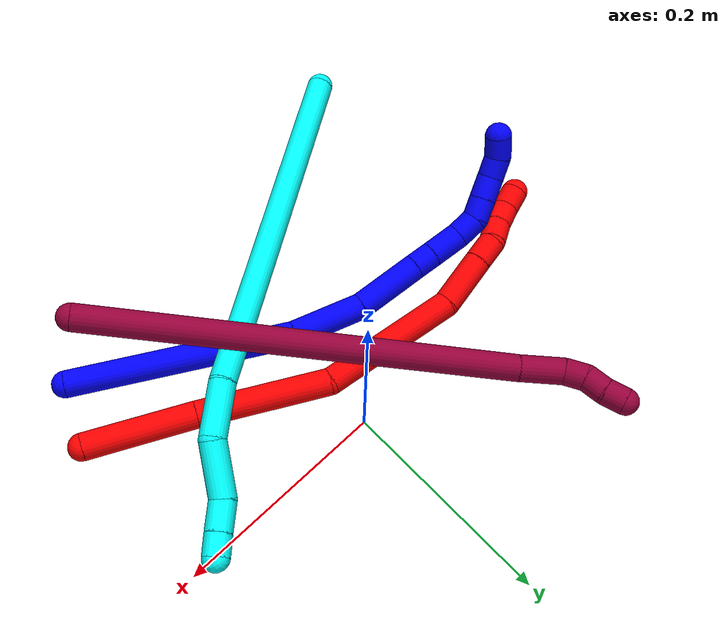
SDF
<sdf version="1.7">
 <world name="default">
  <model name="1">
   <static>0</static>
   <link name="1">
    <collision name="collision-cylinder-e_1_1_4">
     <pose>-0.084362 0.015062 -0.060694 -2.89834 -0.932909 2.66529</pose>
     <geometry><cylinder><radius>0.0125</radius><length>0.210024</length></cylinder></geometry>
     <surface>
      <friction><ode><mu>1.16</mu><mu2>1.16</mu2><slip1>0</slip1><slip2>0</slip2></ode></friction>
      <contact><ode><kp>1e+06</kp><kd>1</kd><max_vel>0</max_vel><min_depth>0.001</min_depth></ode></contact>
     </surface>
    </collision>
    <visual name="visual-cylinder-e_1_1_4">
     <pose>-0.084362 0.015062 -0.060694 -2.89834 -0.932909 2.66529</pose>
     <geometry><cylinder><radius>0.0125</radius><length>0.210024</length></cylinder></geometry>
     <material><ambient>0 0 1 1</ambient></material>
    </visual>
    <collision name="collision-cylinder-e_2_4_5">
     <pose>-0.19538 0.042397 -0.139062 -2.53465 -0.891665 1.98152</pose>
     <geometry><cylinder><radius>0.0125</radius><length>0.068515</length></cylinder></geometry>
     <surface>
      <friction><ode><mu>1.16</mu><mu2>1.16</mu2><slip1>0</slip1><slip2>0</slip2></ode></friction>
      <contact><ode><kp>1e+06</kp><kd>1</kd><max_vel>0</max_vel><min_depth>0.001</min_depth></ode></contact>
     </surface>
    </collision>
    <visual name="visual-cylinder-e_2_4_5">
     <pose>-0.19538 0.042397 -0.139062 -2.53465 -0.891665 1.98152</pose>
     <geometry><cylinder><radius>0.0125</radius><length>0.068515</length></cylinder></geometry>
     <material><ambient>0 0 1 1</ambient></material>
    </visual>
    <collision name="collision-cylinder-e_3_5_6">
     <pose>-0.24225 0.07164 -0.174721 -2.38523 -0.685294 1.46324</pose>
     <geometry><cylinder><radius>0.0125</radius><length>0.063876</length></cylinder></geometry>
     <surface>
      <friction><ode><mu>1.16</mu><mu2>1.16</mu2><slip1>0</slip1><slip2>0</slip2></ode></friction>
      <contact><ode><kp>1e+06</kp><kd>1</kd><max_vel>0</max_vel><min_depth>0.001</min_depth></ode></contact>
     </surface>
    </collision>
    <visual name="visual-cylinder-e_3_5_6">
     <pose>-0.24225 0.07164 -0.174721 -2.38523 -0.685294 1.46324</pose>
     <geometry><cylinder><radius>0.0125</radius><length>0.063876</length></cylinder></geometry>
     <material><ambient>0 0 1 1</ambient></material>
    </visual>
    <collision name="collision-cylinder-e_4_6_7">
     <pose>-0.268956 0.093913 -0.198757 -2.42196 -0.678934 1.5076</pose>
     <geometry><cylinder><radius>0.0125</radius><length>0.020676</length></cylinder></geometry>
     <surface>
      <friction><ode><mu>1.16</mu><mu2>1.16</mu2><slip1>0</slip1><slip2>0</slip2></ode></friction>
      <contact><ode><kp>1e+06</kp><kd>1</kd><max_vel>0</max_vel><min_depth>0.001</min_depth></ode></contact>
     </surface>
    </collision>
    <visual name="visual-cylinder-e_4_6_7">
     <pose>-0.268956 0.093913 -0.198757 -2.42196 -0.678934 1.5076</pose>
     <geometry><cylinder><radius>0.0125</radius><length>0.020676</length></cylinder></geometry>
     <material><ambient>0 0 1 1</ambient></material>
    </visual>
    <collision name="collision-cylinder-e_5_7_8">
     <pose>-0.285078 0.107232 -0.214224 -2.43633 -0.66168 1.50182</pose>
     <geometry><cylinder><radius>0.0125</radius><length>0.031347</length></cylinder></geometry>
     <surface>
      <friction><ode><mu>1.16</mu><mu2>1.16</mu2><slip1>0</slip1><slip2>0</slip2></ode></friction>
      <contact><ode><kp>1e+06</kp><kd>1</kd><max_vel>0</max_vel><min_depth>0.001</min_depth></ode></contact>
     </surface>
    </collision>
    <visual name="visual-cylinder-e_5_7_8">
     <pose>-0.285078 0.107232 -0.214224 -2.43633 -0.66168 1.50182</pose>
     <geometry><cylinder><radius>0.0125</radius><length>0.031347</length></cylinder></geometry>
     <material><ambient>0 0 1 1</ambient></material>
    </visual>
    <collision name="collision-cylinder-e_6_8_9">
     <pose>-0.299806 0.121178 -0.231607 -2.50182 -0.474132 1.26031</pose>
     <geometry><cylinder><radius>0.0125</radius><length>0.022327</length></cylinder></geometry>
     <surface>
      <friction><ode><mu>1.16</mu><mu2>1.16</mu2><slip1>0</slip1><slip2>0</slip2></ode></friction>
      <contact><ode><kp>1e+06</kp><kd>1</kd><max_vel>0</max_vel><min_depth>0.001</min_depth></ode></contact>
     </surface>
    </collision>
    <visual name="visual-cylinder-e_6_8_9">
     <pose>-0.299806 0.121178 -0.231607 -2.50182 -0.474132 1.26031</pose>
     <geometry><cylinder><radius>0.0125</radius><length>0.022327</length></cylinder></geometry>
     <material><ambient>0 0 1 1</ambient></material>
    </visual>
    <collision name="collision-cylinder-e_7_9_10">
     <pose>-0.305443 0.134836 -0.245994 -2.26389 -0.053766 0.11445</pose>
     <geometry><cylinder><radius>0.0125</radius><length>0.020123</length></cylinder></geometry>
     <surface>
      <friction><ode><mu>1.16</mu><mu2>1.16</mu2><slip1>0</slip1><slip2>0</slip2></ode></friction>
      <contact><ode><kp>1e+06</kp><kd>1</kd><max_vel>0</max_vel><min_depth>0.001</min_depth></ode></contact>
     </surface>
    </collision>
    <visual name="visual-cylinder-e_7_9_10">
     <pose>-0.305443 0.134836 -0.245994 -2.26389 -0.053766 0.11445</pose>
     <geometry><cylinder><radius>0.0125</radius><length>0.020123</length></cylinder></geometry>
     <material><ambient>0 0 1 1</ambient></material>
    </visual>
    <collision name="collision-cylinder-e_8_10_11">
     <pose>-0.306576 0.151105 -0.259564 -2.26784 -0.053085 0.113585</pose>
     <geometry><cylinder><radius>0.0125</radius><length>0.022309</length></cylinder></geometry>
     <surface>
      <friction><ode><mu>1.16</mu><mu2>1.16</mu2><slip1>0</slip1><slip2>0</slip2></ode></friction>
      <contact><ode><kp>1e+06</kp><kd>1</kd><max_vel>0</max_vel><min_depth>0.001</min_depth></ode></contact>
     </surface>
    </collision>
    <visual name="visual-cylinder-e_8_10_11">
     <pose>-0.306576 0.151105 -0.259564 -2.26784 -0.053085 0.113585</pose>
     <geometry><cylinder><radius>0.0125</radius><length>0.022309</length></cylinder></geometry>
     <material><ambient>0 0 1 1</ambient></material>
    </visual>
    <collision name="collision-cylinder-e_9_11_12">
     <pose>-0.306118 0.166018 -0.274537 -2.458 0.103707 -0.289725</pose>
     <geometry><cylinder><radius>0.0125</radius><length>0.020288</length></cylinder></geometry>
     <surface>
      <friction><ode><mu>1.16</mu><mu2>1.16</mu2><slip1>0</slip1><slip2>0</slip2></ode></friction>
      <contact><ode><kp>1e+06</kp><kd>1</kd><max_vel>0</max_vel><min_depth>0.001</min_depth></ode></contact>
     </surface>
    </collision>
    <visual name="visual-cylinder-e_9_11_12">
     <pose>-0.306118 0.166018 -0.274537 -2.458 0.103707 -0.289725</pose>
     <geometry><cylinder><radius>0.0125</radius><length>0.020288</length></cylinder></geometry>
     <material><ambient>0 0 1 1</ambient></material>
    </visual>
    <collision name="collision-cylinder-e_10_12_2">
     <pose>-0.300211 0.177845 -0.289563 -2.4935 0.493196 -1.28626</pose>
     <geometry><cylinder><radius>0.0125</radius><length>0.020515</length></cylinder></geometry>
     <surface>
      <friction><ode><mu>1.16</mu><mu2>1.16</mu2><slip1>0</slip1><slip2>0</slip2></ode></friction>
      <contact><ode><kp>1e+06</kp><kd>1</kd><max_vel>0</max_vel><min_depth>0.001</min_depth></ode></contact>
     </surface>
    </collision>
    <visual name="visual-cylinder-e_10_12_2">
     <pose>-0.300211 0.177845 -0.289563 -2.4935 0.493196 -1.28626</pose>
     <geometry><cylinder><radius>0.0125</radius><length>0.020515</length></cylinder></geometry>
     <material><ambient>0 0 1 1</ambient></material>
    </visual>
    <collision name="collision-sphere-2">
     <pose>-0.295355 0.183299 -0.296765 0 -0 0</pose>
     <geometry><sphere><radius>0.0125</radius></sphere></geometry>
     <surface>
      <friction><ode><mu>1.16</mu><mu2>1.16</mu2><slip1>0</slip1><slip2>0</slip2></ode></friction>
      <contact><ode><kp>1e+06</kp><kd>1</kd><max_vel>0</max_vel><min_depth>0.001</min_depth></ode></contact>
     </surface>
    </collision>
    <visual name="visual-sphere-2">
     <pose>-0.295355 0.183299 -0.296765 0 -0 0</pose>
     <geometry><sphere><radius>0.0125</radius></sphere></geometry>
     <material><ambient>0 0 1 1</ambient></material>
    </visual>
    <collision name="collision-sphere-12">
     <pose>-0.305068 0.172391 -0.28236 0 -0 0</pose>
     <geometry><sphere><radius>0.0125</radius></sphere></geometry>
     <surface>
      <friction><ode><mu>1.16</mu><mu2>1.16</mu2><slip1>0</slip1><slip2>0</slip2></ode></friction>
      <contact><ode><kp>1e+06</kp><kd>1</kd><max_vel>0</max_vel><min_depth>0.001</min_depth></ode></contact>
     </surface>
    </collision>
    <visual name="visual-sphere-12">
     <pose>-0.305068 0.172391 -0.28236 0 -0 0</pose>
     <geometry><sphere><radius>0.0125</radius></sphere></geometry>
     <material><ambient>0 0 1 1</ambient></material>
    </visual>
    <collision name="collision-sphere-11">
     <pose>-0.307168 0.159646 -0.266714 0 -0 0</pose>
     <geometry><sphere><radius>0.0125</radius></sphere></geometry>
     <surface>
      <friction><ode><mu>1.16</mu><mu2>1.16</mu2><slip1>0</slip1><slip2>0</slip2></ode></friction>
      <contact><ode><kp>1e+06</kp><kd>1</kd><max_vel>0</max_vel><min_depth>0.001</min_depth></ode></contact>
     </surface>
    </collision>
    <visual name="visual-sphere-11">
     <pose>-0.307168 0.159646 -0.266714 0 -0 0</pose>
     <geometry><sphere><radius>0.0125</radius></sphere></geometry>
     <material><ambient>0 0 1 1</ambient></material>
    </visual>
    <collision name="collision-sphere-10">
     <pose>-0.305984 0.142565 -0.252413 0 -0 0</pose>
     <geometry><sphere><radius>0.0125</radius></sphere></geometry>
     <surface>
      <friction><ode><mu>1.16</mu><mu2>1.16</mu2><slip1>0</slip1><slip2>0</slip2></ode></friction>
      <contact><ode><kp>1e+06</kp><kd>1</kd><max_vel>0</max_vel><min_depth>0.001</min_depth></ode></contact>
     </surface>
    </collision>
    <visual name="visual-sphere-10">
     <pose>-0.305984 0.142565 -0.252413 0 -0 0</pose>
     <geometry><sphere><radius>0.0125</radius></sphere></geometry>
     <material><ambient>0 0 1 1</ambient></material>
    </visual>
    <collision name="collision-sphere-9">
     <pose>-0.304903 0.127107 -0.239575 0 -0 0</pose>
     <geometry><sphere><radius>0.0125</radius></sphere></geometry>
     <surface>
      <friction><ode><mu>1.16</mu><mu2>1.16</mu2><slip1>0</slip1><slip2>0</slip2></ode></friction>
      <contact><ode><kp>1e+06</kp><kd>1</kd><max_vel>0</max_vel><min_depth>0.001</min_depth></ode></contact>
     </surface>
    </collision>
    <visual name="visual-sphere-9">
     <pose>-0.304903 0.127107 -0.239575 0 -0 0</pose>
     <geometry><sphere><radius>0.0125</radius></sphere></geometry>
     <material><ambient>0 0 1 1</ambient></material>
    </visual>
    <collision name="collision-sphere-4">
     <pose>-0.168724 0.030125 -0.121387 0 -0 0</pose>
     <geometry><sphere><radius>0.0125</radius></sphere></geometry>
     <surface>
      <friction><ode><mu>1.16</mu><mu2>1.16</mu2><slip1>0</slip1><slip2>0</slip2></ode></friction>
      <contact><ode><kp>1e+06</kp><kd>1</kd><max_vel>0</max_vel><min_depth>0.001</min_depth></ode></contact>
     </surface>
    </collision>
    <visual name="visual-sphere-4">
     <pose>-0.168724 0.030125 -0.121387 0 -0 0</pose>
     <geometry><sphere><radius>0.0125</radius></sphere></geometry>
     <material><ambient>0 0 1 1</ambient></material>
    </visual>
    <collision name="collision-sphere-1">
     <geometry><sphere><radius>0.0125</radius></sphere></geometry>
     <surface>
      <friction><ode><mu>1.16</mu><mu2>1.16</mu2><slip1>0</slip1><slip2>0</slip2></ode></friction>
      <contact><ode><kp>1e+06</kp><kd>1</kd><max_vel>0</max_vel><min_depth>0.001</min_depth></ode></contact>
     </surface>
    </collision>
    <visual name="visual-sphere-1">
     <geometry><sphere><radius>0.0125</radius></sphere></geometry>
     <material><ambient>0 0 1 1</ambient></material>
    </visual>
    <collision name="collision-sphere-8">
     <pose>-0.294709 0.115248 -0.223639 0 -0 0</pose>
     <geometry><sphere><radius>0.0125</radius></sphere></geometry>
     <surface>
      <friction><ode><mu>1.16</mu><mu2>1.16</mu2><slip1>0</slip1><slip2>0</slip2></ode></friction>
      <contact><ode><kp>1e+06</kp><kd>1</kd><max_vel>0</max_vel><min_depth>0.001</min_depth></ode></contact>
     </surface>
    </collision>
    <visual name="visual-sphere-8">
     <pose>-0.294709 0.115248 -0.223639 0 -0 0</pose>
     <geometry><sphere><radius>0.0125</radius></sphere></geometry>
     <material><ambient>0 0 1 1</ambient></material>
    </visual>
    <collision name="collision-sphere-5">
     <pose>-0.222037 0.05467 -0.156736 0 -0 0</pose>
     <geometry><sphere><radius>0.0125</radius></sphere></geometry>
     <surface>
      <friction><ode><mu>1.16</mu><mu2>1.16</mu2><slip1>0</slip1><slip2>0</slip2></ode></friction>
      <contact><ode><kp>1e+06</kp><kd>1</kd><max_vel>0</max_vel><min_depth>0.001</min_depth></ode></contact>
     </surface>
    </collision>
    <visual name="visual-sphere-5">
     <pose>-0.222037 0.05467 -0.156736 0 -0 0</pose>
     <geometry><sphere><radius>0.0125</radius></sphere></geometry>
     <material><ambient>0 0 1 1</ambient></material>
    </visual>
    <collision name="collision-sphere-6">
     <pose>-0.262464 0.08861 -0.192706 0 -0 0</pose>
     <geometry><sphere><radius>0.0125</radius></sphere></geometry>
     <surface>
      <friction><ode><mu>1.16</mu><mu2>1.16</mu2><slip1>0</slip1><slip2>0</slip2></ode></friction>
      <contact><ode><kp>1e+06</kp><kd>1</kd><max_vel>0</max_vel><min_depth>0.001</min_depth></ode></contact>
     </surface>
    </collision>
    <visual name="visual-sphere-6">
     <pose>-0.262464 0.08861 -0.192706 0 -0 0</pose>
     <geometry><sphere><radius>0.0125</radius></sphere></geometry>
     <material><ambient>0 0 1 1</ambient></material>
    </visual>
    <collision name="collision-sphere-7">
     <pose>-0.275448 0.099216 -0.204808 0 -0 0</pose>
     <geometry><sphere><radius>0.0125</radius></sphere></geometry>
     <surface>
      <friction><ode><mu>1.16</mu><mu2>1.16</mu2><slip1>0</slip1><slip2>0</slip2></ode></friction>
      <contact><ode><kp>1e+06</kp><kd>1</kd><max_vel>0</max_vel><min_depth>0.001</min_depth></ode></contact>
     </surface>
    </collision>
    <visual name="visual-sphere-7">
     <pose>-0.275448 0.099216 -0.204808 0 -0 0</pose>
     <geometry><sphere><radius>0.0125</radius></sphere></geometry>
     <material><ambient>0 0 1 1</ambient></material>
    </visual>
    <inertial>
     <pose>-0.186249 0.063508 -0.143364 0 -0 0</pose>
     <mass>0.5</mass>
     <inertia>
      <ixx>-0.000183</ixx>
      <ixy>0</ixy>
      <ixz>0</ixz>
      <iyy>0.001039</iyy>
      <iyz>0</iyz>
      <izz>0.000502</izz>
     </inertia>
    </inertial>
   </link>
   <pose>0.172231 -0.208647 0.011496 -3.08128 -0.603874 -0.710256</pose>
  </model>
  <model name="2">
   <static>0</static>
   <link name="2">
    <collision name="collision-cylinder-e_1_1_4">
     <pose>-0.042837 0.023736 0.015879 -0.981193 -0.982797 0.556891</pose>
     <geometry><cylinder><radius>0.0125</radius><length>0.102967</length></cylinder></geometry>
     <surface>
      <friction><ode><mu>1.16</mu><mu2>1.16</mu2><slip1>0</slip1><slip2>0</slip2></ode></friction>
      <contact><ode><kp>1e+06</kp><kd>1</kd><max_vel>0</max_vel><min_depth>0.001</min_depth></ode></contact>
     </surface>
    </collision>
    <visual name="visual-cylinder-e_1_1_4">
     <pose>-0.042837 0.023736 0.015879 -0.981193 -0.982797 0.556891</pose>
     <geometry><cylinder><radius>0.0125</radius><length>0.102967</length></cylinder></geometry>
     <material><ambient>1 0 0 1</ambient></material>
    </visual>
    <collision name="collision-cylinder-e_2_4_5">
     <pose>-0.135434 0.073661 0.056285 -0.818154 -0.946069 0.436682</pose>
     <geometry><cylinder><radius>0.0125</radius><length>0.122694</length></cylinder></geometry>
     <surface>
      <friction><ode><mu>1.16</mu><mu2>1.16</mu2><slip1>0</slip1><slip2>0</slip2></ode></friction>
      <contact><ode><kp>1e+06</kp><kd>1</kd><max_vel>0</max_vel><min_depth>0.001</min_depth></ode></contact>
     </surface>
    </collision>
    <visual name="visual-cylinder-e_2_4_5">
     <pose>-0.135434 0.073661 0.056285 -0.818154 -0.946069 0.436682</pose>
     <geometry><cylinder><radius>0.0125</radius><length>0.122694</length></cylinder></geometry>
     <material><ambient>1 0 0 1</ambient></material>
    </visual>
    <collision name="collision-cylinder-e_3_5_6">
     <pose>-0.248717 0.118681 0.086335 -1.28552 -1.27115 1.00939</pose>
     <geometry><cylinder><radius>0.0125</radius><length>0.132971</length></cylinder></geometry>
     <surface>
      <friction><ode><mu>1.16</mu><mu2>1.16</mu2><slip1>0</slip1><slip2>0</slip2></ode></friction>
      <contact><ode><kp>1e+06</kp><kd>1</kd><max_vel>0</max_vel><min_depth>0.001</min_depth></ode></contact>
     </surface>
    </collision>
    <visual name="visual-cylinder-e_3_5_6">
     <pose>-0.248717 0.118681 0.086335 -1.28552 -1.27115 1.00939</pose>
     <geometry><cylinder><radius>0.0125</radius><length>0.132971</length></cylinder></geometry>
     <material><ambient>1 0 0 1</ambient></material>
    </visual>
    <collision name="collision-cylinder-e_4_6_7">
     <pose>-0.338192 0.138426 0.088639 -2.86523 -1.44262 2.82791</pose>
     <geometry><cylinder><radius>0.0125</radius><length>0.052334</length></cylinder></geometry>
     <surface>
      <friction><ode><mu>1.16</mu><mu2>1.16</mu2><slip1>0</slip1><slip2>0</slip2></ode></friction>
      <contact><ode><kp>1e+06</kp><kd>1</kd><max_vel>0</max_vel><min_depth>0.001</min_depth></ode></contact>
     </surface>
    </collision>
    <visual name="visual-cylinder-e_4_6_7">
     <pose>-0.338192 0.138426 0.088639 -2.86523 -1.44262 2.82791</pose>
     <geometry><cylinder><radius>0.0125</radius><length>0.052334</length></cylinder></geometry>
     <material><ambient>1 0 0 1</ambient></material>
    </visual>
    <collision name="collision-cylinder-e_5_7_8">
     <pose>-0.376641 0.140117 0.083684 -2.72025 -1.41962 2.65373</pose>
     <geometry><cylinder><radius>0.0125</radius><length>0.025282</length></cylinder></geometry>
     <surface>
      <friction><ode><mu>1.16</mu><mu2>1.16</mu2><slip1>0</slip1><slip2>0</slip2></ode></friction>
      <contact><ode><kp>1e+06</kp><kd>1</kd><max_vel>0</max_vel><min_depth>0.001</min_depth></ode></contact>
     </surface>
    </collision>
    <visual name="visual-cylinder-e_5_7_8">
     <pose>-0.376641 0.140117 0.083684 -2.72025 -1.41962 2.65373</pose>
     <geometry><cylinder><radius>0.0125</radius><length>0.025282</length></cylinder></geometry>
     <material><ambient>1 0 0 1</ambient></material>
    </visual>
    <collision name="collision-cylinder-e_6_8_9">
     <pose>-0.398493 0.141271 0.076587 -3.07167 -1.04943 3.0209</pose>
     <geometry><cylinder><radius>0.0125</radius><length>0.021577</length></cylinder></geometry>
     <surface>
      <friction><ode><mu>1.16</mu><mu2>1.16</mu2><slip1>0</slip1><slip2>0</slip2></ode></friction>
      <contact><ode><kp>1e+06</kp><kd>1</kd><max_vel>0</max_vel><min_depth>0.001</min_depth></ode></contact>
     </surface>
    </collision>
    <visual name="visual-cylinder-e_6_8_9">
     <pose>-0.398493 0.141271 0.076587 -3.07167 -1.04943 3.0209</pose>
     <geometry><cylinder><radius>0.0125</radius><length>0.021577</length></cylinder></geometry>
     <material><ambient>1 0 0 1</ambient></material>
    </visual>
    <collision name="collision-cylinder-e_7_9_10">
     <pose>-0.417647 0.14251 0.067103 -2.93523 -1.16468 2.82966</pose>
     <geometry><cylinder><radius>0.0125</radius><length>0.021331</length></cylinder></geometry>
     <surface>
      <friction><ode><mu>1.16</mu><mu2>1.16</mu2><slip1>0</slip1><slip2>0</slip2></ode></friction>
      <contact><ode><kp>1e+06</kp><kd>1</kd><max_vel>0</max_vel><min_depth>0.001</min_depth></ode></contact>
     </surface>
    </collision>
    <visual name="visual-cylinder-e_7_9_10">
     <pose>-0.417647 0.14251 0.067103 -2.93523 -1.16468 2.82966</pose>
     <geometry><cylinder><radius>0.0125</radius><length>0.021331</length></cylinder></geometry>
     <material><ambient>1 0 0 1</ambient></material>
    </visual>
    <collision name="collision-cylinder-e_8_10_2">
     <pose>-0.437591 0.143283 0.060602 3.10383 -1.34051 -3.09395</pose>
     <geometry><cylinder><radius>0.0125</radius><length>0.020844</length></cylinder></geometry>
     <surface>
      <friction><ode><mu>1.16</mu><mu2>1.16</mu2><slip1>0</slip1><slip2>0</slip2></ode></friction>
      <contact><ode><kp>1e+06</kp><kd>1</kd><max_vel>0</max_vel><min_depth>0.001</min_depth></ode></contact>
     </surface>
    </collision>
    <visual name="visual-cylinder-e_8_10_2">
     <pose>-0.437591 0.143283 0.060602 3.10383 -1.34051 -3.09395</pose>
     <geometry><cylinder><radius>0.0125</radius><length>0.020844</length></cylinder></geometry>
     <material><ambient>1 0 0 1</ambient></material>
    </visual>
    <collision name="collision-sphere-2">
     <pose>-0.447738 0.143194 0.058224 0 -0 0</pose>
     <geometry><sphere><radius>0.0125</radius></sphere></geometry>
     <surface>
      <friction><ode><mu>1.16</mu><mu2>1.16</mu2><slip1>0</slip1><slip2>0</slip2></ode></friction>
      <contact><ode><kp>1e+06</kp><kd>1</kd><max_vel>0</max_vel><min_depth>0.001</min_depth></ode></contact>
     </surface>
    </collision>
    <visual name="visual-sphere-2">
     <pose>-0.447738 0.143194 0.058224 0 -0 0</pose>
     <geometry><sphere><radius>0.0125</radius></sphere></geometry>
     <material><ambient>1 0 0 1</ambient></material>
    </visual>
    <collision name="collision-sphere-10">
     <pose>-0.427444 0.143373 0.062979 0 -0 0</pose>
     <geometry><sphere><radius>0.0125</radius></sphere></geometry>
     <surface>
      <friction><ode><mu>1.16</mu><mu2>1.16</mu2><slip1>0</slip1><slip2>0</slip2></ode></friction>
      <contact><ode><kp>1e+06</kp><kd>1</kd><max_vel>0</max_vel><min_depth>0.001</min_depth></ode></contact>
     </surface>
    </collision>
    <visual name="visual-sphere-10">
     <pose>-0.427444 0.143373 0.062979 0 -0 0</pose>
     <geometry><sphere><radius>0.0125</radius></sphere></geometry>
     <material><ambient>1 0 0 1</ambient></material>
    </visual>
    <collision name="collision-sphere-9">
     <pose>-0.407849 0.141647 0.071227 0 -0 0</pose>
     <geometry><sphere><radius>0.0125</radius></sphere></geometry>
     <surface>
      <friction><ode><mu>1.16</mu><mu2>1.16</mu2><slip1>0</slip1><slip2>0</slip2></ode></friction>
      <contact><ode><kp>1e+06</kp><kd>1</kd><max_vel>0</max_vel><min_depth>0.001</min_depth></ode></contact>
     </surface>
    </collision>
    <visual name="visual-sphere-9">
     <pose>-0.407849 0.141647 0.071227 0 -0 0</pose>
     <geometry><sphere><radius>0.0125</radius></sphere></geometry>
     <material><ambient>1 0 0 1</ambient></material>
    </visual>
    <collision name="collision-sphere-4">
     <pose>-0.085674 0.047472 0.031758 0 -0 0</pose>
     <geometry><sphere><radius>0.0125</radius></sphere></geometry>
     <surface>
      <friction><ode><mu>1.16</mu><mu2>1.16</mu2><slip1>0</slip1><slip2>0</slip2></ode></friction>
      <contact><ode><kp>1e+06</kp><kd>1</kd><max_vel>0</max_vel><min_depth>0.001</min_depth></ode></contact>
     </surface>
    </collision>
    <visual name="visual-sphere-4">
     <pose>-0.085674 0.047472 0.031758 0 -0 0</pose>
     <geometry><sphere><radius>0.0125</radius></sphere></geometry>
     <material><ambient>1 0 0 1</ambient></material>
    </visual>
    <collision name="collision-sphere-1">
     <geometry><sphere><radius>0.0125</radius></sphere></geometry>
     <surface>
      <friction><ode><mu>1.16</mu><mu2>1.16</mu2><slip1>0</slip1><slip2>0</slip2></ode></friction>
      <contact><ode><kp>1e+06</kp><kd>1</kd><max_vel>0</max_vel><min_depth>0.001</min_depth></ode></contact>
     </surface>
    </collision>
    <visual name="visual-sphere-1">
     <geometry><sphere><radius>0.0125</radius></sphere></geometry>
     <material><ambient>1 0 0 1</ambient></material>
    </visual>
    <collision name="collision-sphere-8">
     <pose>-0.389138 0.140896 0.081947 0 -0 0</pose>
     <geometry><sphere><radius>0.0125</radius></sphere></geometry>
     <surface>
      <friction><ode><mu>1.16</mu><mu2>1.16</mu2><slip1>0</slip1><slip2>0</slip2></ode></friction>
      <contact><ode><kp>1e+06</kp><kd>1</kd><max_vel>0</max_vel><min_depth>0.001</min_depth></ode></contact>
     </surface>
    </collision>
    <visual name="visual-sphere-8">
     <pose>-0.389138 0.140896 0.081947 0 -0 0</pose>
     <geometry><sphere><radius>0.0125</radius></sphere></geometry>
     <material><ambient>1 0 0 1</ambient></material>
    </visual>
    <collision name="collision-sphere-5">
     <pose>-0.185194 0.09985 0.080812 0 -0 0</pose>
     <geometry><sphere><radius>0.0125</radius></sphere></geometry>
     <surface>
      <friction><ode><mu>1.16</mu><mu2>1.16</mu2><slip1>0</slip1><slip2>0</slip2></ode></friction>
      <contact><ode><kp>1e+06</kp><kd>1</kd><max_vel>0</max_vel><min_depth>0.001</min_depth></ode></contact>
     </surface>
    </collision>
    <visual name="visual-sphere-5">
     <pose>-0.185194 0.09985 0.080812 0 -0 0</pose>
     <geometry><sphere><radius>0.0125</radius></sphere></geometry>
     <material><ambient>1 0 0 1</ambient></material>
    </visual>
    <collision name="collision-sphere-6">
     <pose>-0.31224 0.137513 0.091857 0 -0 0</pose>
     <geometry><sphere><radius>0.0125</radius></sphere></geometry>
     <surface>
      <friction><ode><mu>1.16</mu><mu2>1.16</mu2><slip1>0</slip1><slip2>0</slip2></ode></friction>
      <contact><ode><kp>1e+06</kp><kd>1</kd><max_vel>0</max_vel><min_depth>0.001</min_depth></ode></contact>
     </surface>
    </collision>
    <visual name="visual-sphere-6">
     <pose>-0.31224 0.137513 0.091857 0 -0 0</pose>
     <geometry><sphere><radius>0.0125</radius></sphere></geometry>
     <material><ambient>1 0 0 1</ambient></material>
    </visual>
    <collision name="collision-sphere-7">
     <pose>-0.364145 0.139339 0.085422 0 -0 0</pose>
     <geometry><sphere><radius>0.0125</radius></sphere></geometry>
     <surface>
      <friction><ode><mu>1.16</mu><mu2>1.16</mu2><slip1>0</slip1><slip2>0</slip2></ode></friction>
      <contact><ode><kp>1e+06</kp><kd>1</kd><max_vel>0</max_vel><min_depth>0.001</min_depth></ode></contact>
     </surface>
    </collision>
    <visual name="visual-sphere-7">
     <pose>-0.364145 0.139339 0.085422 0 -0 0</pose>
     <geometry><sphere><radius>0.0125</radius></sphere></geometry>
     <material><ambient>1 0 0 1</ambient></material>
    </visual>
    <inertial>
     <pose>-0.215899 0.094249 0.062245 0 -0 0</pose>
     <mass>0.5</mass>
     <inertia>
      <ixx>0.00024</ixx>
      <ixy>0</ixy>
      <ixz>0</ixz>
      <iyy>0.000555</iyy>
      <iyz>0</iyz>
      <izz>0.000256</izz>
     </inertia>
    </inertial>
   </link>
   <pose>0.19857 -0.148674 0.018595 -0.985043 0.179023 0.09881</pose>
  </model>
  <model name="3">
   <static>0</static>
   <link name="3">
    <collision name="collision-cylinder-e_1_1_4">
     <pose>0.152517 0.071195 -0.040633 -2.08942 1.07762 -1.59988</pose>
     <geometry><cylinder><radius>0.0125</radius><length>0.346302</length></cylinder></geometry>
     <surface>
      <friction><ode><mu>1.16</mu><mu2>1.16</mu2><slip1>0</slip1><slip2>0</slip2></ode></friction>
      <contact><ode><kp>1e+06</kp><kd>1</kd><max_vel>0</max_vel><min_depth>0.001</min_depth></ode></contact>
     </surface>
    </collision>
    <visual name="visual-cylinder-e_1_1_4">
     <pose>0.152517 0.071195 -0.040633 -2.08942 1.07762 -1.59988</pose>
     <geometry><cylinder><radius>0.0125</radius><length>0.346302</length></cylinder></geometry>
     <material><ambient>0.003922 1 0.996078 1</ambient></material>
    </visual>
    <collision name="collision-cylinder-e_2_4_5">
     <pose>0.32554 0.157332 -0.087364 -1.95821 0.90403 -1.25137</pose>
     <geometry><cylinder><radius>0.0125</radius><length>0.05219</length></cylinder></geometry>
     <surface>
      <friction><ode><mu>1.16</mu><mu2>1.16</mu2><slip1>0</slip1><slip2>0</slip2></ode></friction>
      <contact><ode><kp>1e+06</kp><kd>1</kd><max_vel>0</max_vel><min_depth>0.001</min_depth></ode></contact>
     </surface>
    </collision>
    <visual name="visual-cylinder-e_2_4_5">
     <pose>0.32554 0.157332 -0.087364 -1.95821 0.90403 -1.25137</pose>
     <geometry><cylinder><radius>0.0125</radius><length>0.05219</length></cylinder></geometry>
     <material><ambient>0.003922 1 0.996078 1</ambient></material>
    </visual>
    <collision name="collision-cylinder-e_3_5_6">
     <pose>0.358086 0.194889 -0.097292 -1.73863 0.483377 -0.567807</pose>
     <geometry><cylinder><radius>0.0125</radius><length>0.051809</length></cylinder></geometry>
     <surface>
      <friction><ode><mu>1.16</mu><mu2>1.16</mu2><slip1>0</slip1><slip2>0</slip2></ode></friction>
      <contact><ode><kp>1e+06</kp><kd>1</kd><max_vel>0</max_vel><min_depth>0.001</min_depth></ode></contact>
     </surface>
    </collision>
    <visual name="visual-cylinder-e_3_5_6">
     <pose>0.358086 0.194889 -0.097292 -1.73863 0.483377 -0.567807</pose>
     <geometry><cylinder><radius>0.0125</radius><length>0.051809</length></cylinder></geometry>
     <material><ambient>0.003922 1 0.996078 1</ambient></material>
    </visual>
    <collision name="collision-cylinder-e_4_6_7">
     <pose>0.381224 0.226246 -0.104326 -1.92193 0.872752 -1.17716</pose>
     <geometry><cylinder><radius>0.0125</radius><length>0.028974</length></cylinder></geometry>
     <surface>
      <friction><ode><mu>1.16</mu><mu2>1.16</mu2><slip1>0</slip1><slip2>0</slip2></ode></friction>
      <contact><ode><kp>1e+06</kp><kd>1</kd><max_vel>0</max_vel><min_depth>0.001</min_depth></ode></contact>
     </surface>
    </collision>
    <visual name="visual-cylinder-e_4_6_7">
     <pose>0.381224 0.226246 -0.104326 -1.92193 0.872752 -1.17716</pose>
     <geometry><cylinder><radius>0.0125</radius><length>0.028974</length></cylinder></geometry>
     <material><ambient>0.003922 1 0.996078 1</ambient></material>
    </visual>
    <collision name="collision-cylinder-e_5_7_2">
     <pose>0.400143 0.241468 -0.109592 -1.87903 0.855143 -1.11476</pose>
     <geometry><cylinder><radius>0.0125</radius><length>0.020725</length></cylinder></geometry>
     <surface>
      <friction><ode><mu>1.16</mu><mu2>1.16</mu2><slip1>0</slip1><slip2>0</slip2></ode></friction>
      <contact><ode><kp>1e+06</kp><kd>1</kd><max_vel>0</max_vel><min_depth>0.001</min_depth></ode></contact>
     </surface>
    </collision>
    <visual name="visual-cylinder-e_5_7_2">
     <pose>0.400143 0.241468 -0.109592 -1.87903 0.855143 -1.11476</pose>
     <geometry><cylinder><radius>0.0125</radius><length>0.020725</length></cylinder></geometry>
     <material><ambient>0.003922 1 0.996078 1</ambient></material>
    </visual>
    <collision name="collision-sphere-2">
     <pose>0.407963 0.247947 -0.111654 0 -0 0</pose>
     <geometry><sphere><radius>0.0125</radius></sphere></geometry>
     <surface>
      <friction><ode><mu>1.16</mu><mu2>1.16</mu2><slip1>0</slip1><slip2>0</slip2></ode></friction>
      <contact><ode><kp>1e+06</kp><kd>1</kd><max_vel>0</max_vel><min_depth>0.001</min_depth></ode></contact>
     </surface>
    </collision>
    <visual name="visual-sphere-2">
     <pose>0.407963 0.247947 -0.111654 0 -0 0</pose>
     <geometry><sphere><radius>0.0125</radius></sphere></geometry>
     <material><ambient>0.003922 1 0.996078 1</ambient></material>
    </visual>
    <collision name="collision-sphere-7">
     <pose>0.392322 0.234989 -0.107529 0 -0 0</pose>
     <geometry><sphere><radius>0.0125</radius></sphere></geometry>
     <surface>
      <friction><ode><mu>1.16</mu><mu2>1.16</mu2><slip1>0</slip1><slip2>0</slip2></ode></friction>
      <contact><ode><kp>1e+06</kp><kd>1</kd><max_vel>0</max_vel><min_depth>0.001</min_depth></ode></contact>
     </surface>
    </collision>
    <visual name="visual-sphere-7">
     <pose>0.392322 0.234989 -0.107529 0 -0 0</pose>
     <geometry><sphere><radius>0.0125</radius></sphere></geometry>
     <material><ambient>0.003922 1 0.996078 1</ambient></material>
    </visual>
    <collision name="collision-sphere-6">
     <pose>0.370126 0.217503 -0.101124 0 -0 0</pose>
     <geometry><sphere><radius>0.0125</radius></sphere></geometry>
     <surface>
      <friction><ode><mu>1.16</mu><mu2>1.16</mu2><slip1>0</slip1><slip2>0</slip2></ode></friction>
      <contact><ode><kp>1e+06</kp><kd>1</kd><max_vel>0</max_vel><min_depth>0.001</min_depth></ode></contact>
     </surface>
    </collision>
    <visual name="visual-sphere-6">
     <pose>0.370126 0.217503 -0.101124 0 -0 0</pose>
     <geometry><sphere><radius>0.0125</radius></sphere></geometry>
     <material><ambient>0.003922 1 0.996078 1</ambient></material>
    </visual>
    <collision name="collision-sphere-5">
     <pose>0.346046 0.172275 -0.093461 0 -0 0</pose>
     <geometry><sphere><radius>0.0125</radius></sphere></geometry>
     <surface>
      <friction><ode><mu>1.16</mu><mu2>1.16</mu2><slip1>0</slip1><slip2>0</slip2></ode></friction>
      <contact><ode><kp>1e+06</kp><kd>1</kd><max_vel>0</max_vel><min_depth>0.001</min_depth></ode></contact>
     </surface>
    </collision>
    <visual name="visual-sphere-5">
     <pose>0.346046 0.172275 -0.093461 0 -0 0</pose>
     <geometry><sphere><radius>0.0125</radius></sphere></geometry>
     <material><ambient>0.003922 1 0.996078 1</ambient></material>
    </visual>
    <collision name="collision-sphere-1">
     <geometry><sphere><radius>0.0125</radius></sphere></geometry>
     <surface>
      <friction><ode><mu>1.16</mu><mu2>1.16</mu2><slip1>0</slip1><slip2>0</slip2></ode></friction>
      <contact><ode><kp>1e+06</kp><kd>1</kd><max_vel>0</max_vel><min_depth>0.001</min_depth></ode></contact>
     </surface>
    </collision>
    <visual name="visual-sphere-1">
     <geometry><sphere><radius>0.0125</radius></sphere></geometry>
     <material><ambient>0.003922 1 0.996078 1</ambient></material>
    </visual>
    <collision name="collision-sphere-4">
     <pose>0.305034 0.14239 -0.081267 0 -0 0</pose>
     <geometry><sphere><radius>0.0125</radius></sphere></geometry>
     <surface>
      <friction><ode><mu>1.16</mu><mu2>1.16</mu2><slip1>0</slip1><slip2>0</slip2></ode></friction>
      <contact><ode><kp>1e+06</kp><kd>1</kd><max_vel>0</max_vel><min_depth>0.001</min_depth></ode></contact>
     </surface>
    </collision>
    <visual name="visual-sphere-4">
     <pose>0.305034 0.14239 -0.081267 0 -0 0</pose>
     <geometry><sphere><radius>0.0125</radius></sphere></geometry>
     <material><ambient>0.003922 1 0.996078 1</ambient></material>
    </visual>
    <inertial>
     <pose>0.215395 0.109046 -0.057931 0 -0 0</pose>
     <mass>0.5</mass>
     <inertia>
      <ixx>-0.001663</ixx>
      <ixy>0</ixy>
      <ixz>0</ixz>
      <iyy>0.001077</iyy>
      <iyz>0</iyz>
      <izz>-0.004541</izz>
     </inertia>
    </inertial>
   </link>
   <pose>-0.216283 -0.288501 0.013354 -0.851539 -0.565841 0.476503</pose>
  </model>
  <model name="8">
   <static>0</static>
   <link name="8">
    <collision name="collision-cylinder-e_1_1_4">
     <pose>-0.169215 0.098334 0.035614 -1.22332 -1.0172 0.745518</pose>
     <geometry><cylinder><radius>0.0125</radius><length>0.397852</length></cylinder></geometry>
     <surface>
      <friction><ode><mu>1.16</mu><mu2>1.16</mu2><slip1>0</slip1><slip2>0</slip2></ode></friction>
      <contact><ode><kp>1e+06</kp><kd>1</kd><max_vel>0</max_vel><min_depth>0.001</min_depth></ode></contact>
     </surface>
    </collision>
    <visual name="visual-cylinder-e_1_1_4">
     <pose>-0.169215 0.098334 0.035614 -1.22332 -1.0172 0.745518</pose>
     <geometry><cylinder><radius>0.0125</radius><length>0.397852</length></cylinder></geometry>
     <material><ambient>0.584314 0 0.227451 1</ambient></material>
    </visual>
    <collision name="collision-cylinder-e_2_4_5">
     <pose>-0.356737 0.204686 0.077206 -0.930133 -1.07088 0.578646</pose>
     <geometry><cylinder><radius>0.0125</radius><length>0.041722</length></cylinder></geometry>
     <surface>
      <friction><ode><mu>1.16</mu><mu2>1.16</mu2><slip1>0</slip1><slip2>0</slip2></ode></friction>
      <contact><ode><kp>1e+06</kp><kd>1</kd><max_vel>0</max_vel><min_depth>0.001</min_depth></ode></contact>
     </surface>
    </collision>
    <visual name="visual-cylinder-e_2_4_5">
     <pose>-0.356737 0.204686 0.077206 -0.930133 -1.07088 0.578646</pose>
     <geometry><cylinder><radius>0.0125</radius><length>0.041722</length></cylinder></geometry>
     <material><ambient>0.584314 0 0.227451 1</ambient></material>
    </visual>
    <collision name="collision-cylinder-e_3_5_6">
     <pose>-0.382448 0.21669 0.08889 -0.60977 -0.816085 0.270431</pose>
     <geometry><cylinder><radius>0.0125</radius><length>0.020325</length></cylinder></geometry>
     <surface>
      <friction><ode><mu>1.16</mu><mu2>1.16</mu2><slip1>0</slip1><slip2>0</slip2></ode></friction>
      <contact><ode><kp>1e+06</kp><kd>1</kd><max_vel>0</max_vel><min_depth>0.001</min_depth></ode></contact>
     </surface>
    </collision>
    <visual name="visual-cylinder-e_3_5_6">
     <pose>-0.382448 0.21669 0.08889 -0.60977 -0.816085 0.270431</pose>
     <geometry><cylinder><radius>0.0125</radius><length>0.020325</length></cylinder></geometry>
     <material><ambient>0.584314 0 0.227451 1</ambient></material>
    </visual>
    <collision name="collision-cylinder-e_4_6_7">
     <pose>-0.394231 0.226177 0.10176 -0.654943 -0.451615 0.155761</pose>
     <geometry><cylinder><radius>0.0125</radius><length>0.020073</length></cylinder></geometry>
     <surface>
      <friction><ode><mu>1.16</mu><mu2>1.16</mu2><slip1>0</slip1><slip2>0</slip2></ode></friction>
      <contact><ode><kp>1e+06</kp><kd>1</kd><max_vel>0</max_vel><min_depth>0.001</min_depth></ode></contact>
     </surface>
    </collision>
    <visual name="visual-cylinder-e_4_6_7">
     <pose>-0.394231 0.226177 0.10176 -0.654943 -0.451615 0.155761</pose>
     <geometry><cylinder><radius>0.0125</radius><length>0.020073</length></cylinder></geometry>
     <material><ambient>0.584314 0 0.227451 1</ambient></material>
    </visual>
    <collision name="collision-cylinder-e_5_7_2">
     <pose>-0.404574 0.23679 0.115133 -0.688635 -0.637794 0.235699</pose>
     <geometry><cylinder><radius>0.0125</radius><length>0.020028</length></cylinder></geometry>
     <surface>
      <friction><ode><mu>1.16</mu><mu2>1.16</mu2><slip1>0</slip1><slip2>0</slip2></ode></friction>
      <contact><ode><kp>1e+06</kp><kd>1</kd><max_vel>0</max_vel><min_depth>0.001</min_depth></ode></contact>
     </surface>
    </collision>
    <visual name="visual-cylinder-e_5_7_2">
     <pose>-0.404574 0.23679 0.115133 -0.688635 -0.637794 0.235699</pose>
     <geometry><cylinder><radius>0.0125</radius><length>0.020028</length></cylinder></geometry>
     <material><ambient>0.584314 0 0.227451 1</ambient></material>
    </visual>
    <collision name="collision-sphere-2">
     <pose>-0.410537 0.241903 0.121345 0 -0 0</pose>
     <geometry><sphere><radius>0.0125</radius></sphere></geometry>
     <surface>
      <friction><ode><mu>1.16</mu><mu2>1.16</mu2><slip1>0</slip1><slip2>0</slip2></ode></friction>
      <contact><ode><kp>1e+06</kp><kd>1</kd><max_vel>0</max_vel><min_depth>0.001</min_depth></ode></contact>
     </surface>
    </collision>
    <visual name="visual-sphere-2">
     <pose>-0.410537 0.241903 0.121345 0 -0 0</pose>
     <geometry><sphere><radius>0.0125</radius></sphere></geometry>
     <material><ambient>0.584314 0 0.227451 1</ambient></material>
    </visual>
    <collision name="collision-sphere-7">
     <pose>-0.398611 0.231677 0.108921 0 -0 0</pose>
     <geometry><sphere><radius>0.0125</radius></sphere></geometry>
     <surface>
      <friction><ode><mu>1.16</mu><mu2>1.16</mu2><slip1>0</slip1><slip2>0</slip2></ode></friction>
      <contact><ode><kp>1e+06</kp><kd>1</kd><max_vel>0</max_vel><min_depth>0.001</min_depth></ode></contact>
     </surface>
    </collision>
    <visual name="visual-sphere-7">
     <pose>-0.398611 0.231677 0.108921 0 -0 0</pose>
     <geometry><sphere><radius>0.0125</radius></sphere></geometry>
     <material><ambient>0.584314 0 0.227451 1</ambient></material>
    </visual>
    <collision name="collision-sphere-6">
     <pose>-0.389851 0.220677 0.094598 0 -0 0</pose>
     <geometry><sphere><radius>0.0125</radius></sphere></geometry>
     <surface>
      <friction><ode><mu>1.16</mu><mu2>1.16</mu2><slip1>0</slip1><slip2>0</slip2></ode></friction>
      <contact><ode><kp>1e+06</kp><kd>1</kd><max_vel>0</max_vel><min_depth>0.001</min_depth></ode></contact>
     </surface>
    </collision>
    <visual name="visual-sphere-6">
     <pose>-0.389851 0.220677 0.094598 0 -0 0</pose>
     <geometry><sphere><radius>0.0125</radius></sphere></geometry>
     <material><ambient>0.584314 0 0.227451 1</ambient></material>
    </visual>
    <collision name="collision-sphere-5">
     <pose>-0.375045 0.212703 0.083183 0 -0 0</pose>
     <geometry><sphere><radius>0.0125</radius></sphere></geometry>
     <surface>
      <friction><ode><mu>1.16</mu><mu2>1.16</mu2><slip1>0</slip1><slip2>0</slip2></ode></friction>
      <contact><ode><kp>1e+06</kp><kd>1</kd><max_vel>0</max_vel><min_depth>0.001</min_depth></ode></contact>
     </surface>
    </collision>
    <visual name="visual-sphere-5">
     <pose>-0.375045 0.212703 0.083183 0 -0 0</pose>
     <geometry><sphere><radius>0.0125</radius></sphere></geometry>
     <material><ambient>0.584314 0 0.227451 1</ambient></material>
    </visual>
    <collision name="collision-sphere-1">
     <geometry><sphere><radius>0.0125</radius></sphere></geometry>
     <surface>
      <friction><ode><mu>1.16</mu><mu2>1.16</mu2><slip1>0</slip1><slip2>0</slip2></ode></friction>
      <contact><ode><kp>1e+06</kp><kd>1</kd><max_vel>0</max_vel><min_depth>0.001</min_depth></ode></contact>
     </surface>
    </collision>
    <visual name="visual-sphere-1">
     <geometry><sphere><radius>0.0125</radius></sphere></geometry>
     <material><ambient>0.584314 0 0.227451 1</ambient></material>
    </visual>
    <collision name="collision-sphere-4">
     <pose>-0.338429 0.196669 0.071229 0 -0 0</pose>
     <geometry><sphere><radius>0.0125</radius></sphere></geometry>
     <surface>
      <friction><ode><mu>1.16</mu><mu2>1.16</mu2><slip1>0</slip1><slip2>0</slip2></ode></friction>
      <contact><ode><kp>1e+06</kp><kd>1</kd><max_vel>0</max_vel><min_depth>0.001</min_depth></ode></contact>
     </surface>
    </collision>
    <visual name="visual-sphere-4">
     <pose>-0.338429 0.196669 0.071229 0 -0 0</pose>
     <geometry><sphere><radius>0.0125</radius></sphere></geometry>
     <material><ambient>0.584314 0 0.227451 1</ambient></material>
    </visual>
    <inertial>
     <pose>-0.211991 0.122698 0.047091 0 -0 0</pose>
     <mass>0.5</mass>
     <inertia>
      <ixx>0.003888</ixx>
      <ixy>0</ixy>
      <ixz>0</ixz>
      <iyy>0.006082</iyy>
      <iyz>0</iyz>
      <izz>0.001889</izz>
     </inertia>
    </inertial>
   </link>
   <pose>0.138392 -0.218541 0.088803 -0.976741 0.13945 -0.354019</pose>
  </model>
 </world>
</sdf>
